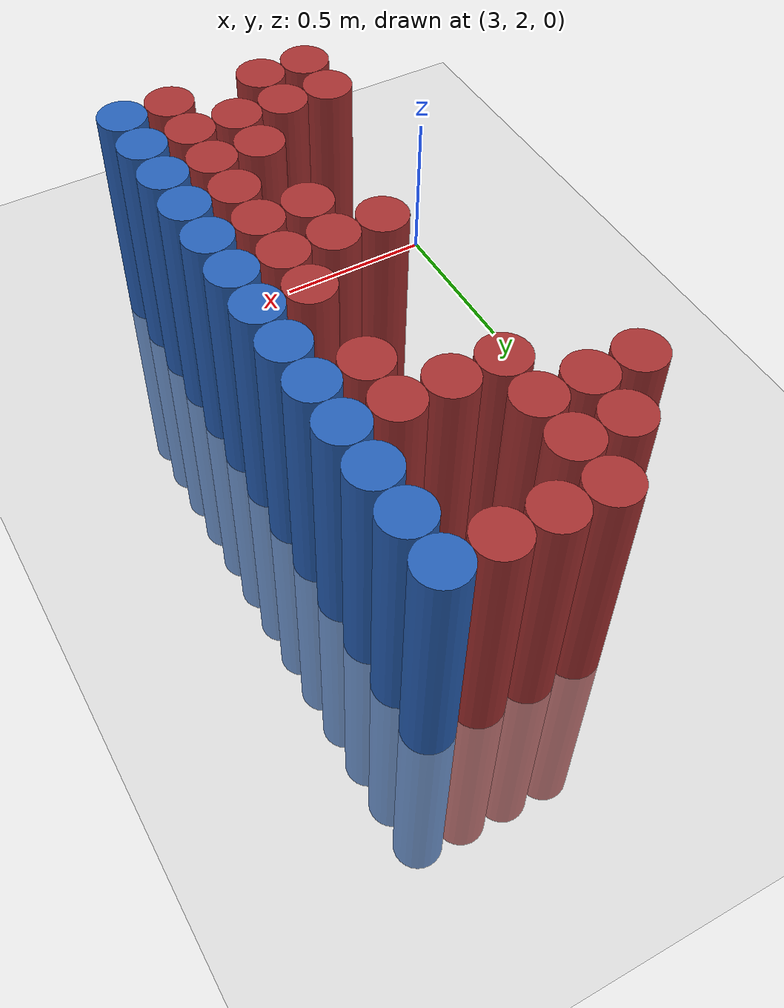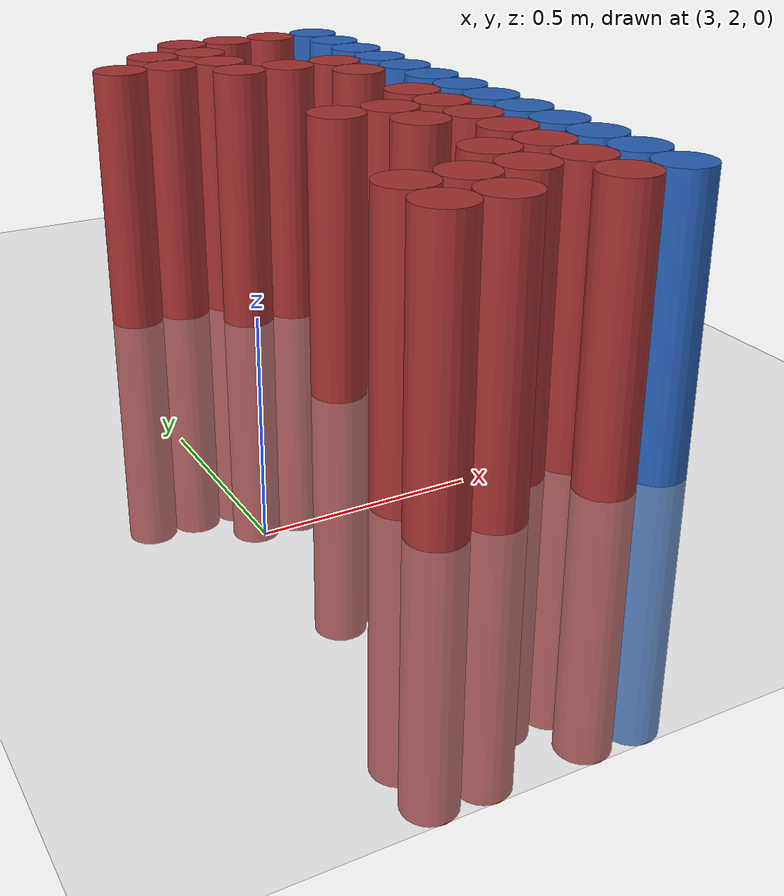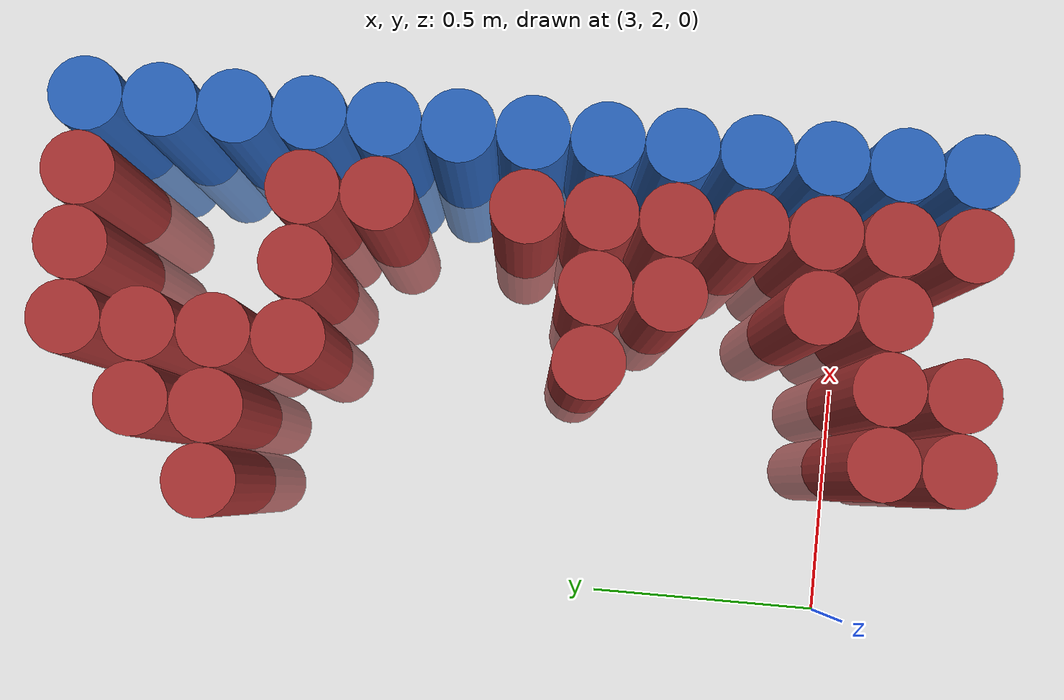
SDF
<sdf version="1.6">
 <world name="default">
  <model name="ground_plane">
   <static>1</static>
   <link name="link">
    <collision name="collision">
     <geometry><plane><normal>0 0 1</normal><size>100 100</size></plane></geometry>
     <surface><friction><ode><mu>100</mu><mu2>50</mu2></ode></friction></surface>
    </collision>
    <visual name="visual">
     <cast_shadows>0</cast_shadows>
     <geometry><plane><normal>0 0 1</normal><size>100 100</size></plane></geometry>
     <material>
      <script><uri>file://media/materials/scripts/gazebo.material</uri><name>Gazebo/Grey</name></script>
     </material>
    </visual>
   </link>
  </model>
  <model name="unit_cylinder_140">
   <static>1</static>
   <pose>3.925000 1.975000 0.000000 0.000000 0.000000 0.000000</pose>
   <link name="link">
    <inertial>
     <mass>1</mass>
     <inertia><ixx>0.145833</ixx><ixy>0</ixy><ixz>0</ixz><iyy>0.145833</iyy><iyz>0</iyz><izz>0.125</izz></inertia>
    </inertial>
    <collision name="collision">
     <geometry><cylinder><radius>0.075000</radius><length>1.5</length></cylinder></geometry>
    </collision>
    <visual name="visual">
     <geometry><cylinder><radius>0.075000</radius><length>1.5</length></cylinder></geometry>
     <material>
      <ambient>0.152000 0.379000 0.720000 1</ambient>
      <diffuse>0.152000 0.379000 0.720000 1</diffuse>
     </material>
     <material>
      <script><name>Gazebo/Grey</name><uri>file://media/materials/scripts/gazebo.material</uri></script>
     </material>
    </visual>
   </link>
  </model>
  <model name="unit_cylinder_142">
   <static>1</static>
   <pose>3.925000 2.125000 0.000000 0.000000 0.000000 0.000000</pose>
   <link name="link">
    <inertial>
     <mass>1</mass>
     <inertia><ixx>0.145833</ixx><ixy>0</ixy><ixz>0</ixz><iyy>0.145833</iyy><iyz>0</iyz><izz>0.125</izz></inertia>
    </inertial>
    <collision name="collision">
     <geometry><cylinder><radius>0.075000</radius><length>1.5</length></cylinder></geometry>
    </collision>
    <visual name="visual">
     <geometry><cylinder><radius>0.075000</radius><length>1.5</length></cylinder></geometry>
     <material>
      <ambient>0.152000 0.379000 0.720000 1</ambient>
      <diffuse>0.152000 0.379000 0.720000 1</diffuse>
     </material>
     <material>
      <script><name>Gazebo/Grey</name><uri>file://media/materials/scripts/gazebo.material</uri></script>
     </material>
    </visual>
   </link>
  </model>
  <model name="unit_cylinder_144">
   <static>1</static>
   <pose>3.925000 2.275000 0.000000 0.000000 0.000000 0.000000</pose>
   <link name="link">
    <inertial>
     <mass>1</mass>
     <inertia><ixx>0.145833</ixx><ixy>0</ixy><ixz>0</ixz><iyy>0.145833</iyy><iyz>0</iyz><izz>0.125</izz></inertia>
    </inertial>
    <collision name="collision">
     <geometry><cylinder><radius>0.075000</radius><length>1.5</length></cylinder></geometry>
    </collision>
    <visual name="visual">
     <geometry><cylinder><radius>0.075000</radius><length>1.5</length></cylinder></geometry>
     <material>
      <ambient>0.152000 0.379000 0.720000 1</ambient>
      <diffuse>0.152000 0.379000 0.720000 1</diffuse>
     </material>
     <material>
      <script><name>Gazebo/Grey</name><uri>file://media/materials/scripts/gazebo.material</uri></script>
     </material>
    </visual>
   </link>
  </model>
  <model name="unit_cylinder_146">
   <static>1</static>
   <pose>3.925000 2.425000 0.000000 0.000000 0.000000 0.000000</pose>
   <link name="link">
    <inertial>
     <mass>1</mass>
     <inertia><ixx>0.145833</ixx><ixy>0</ixy><ixz>0</ixz><iyy>0.145833</iyy><iyz>0</iyz><izz>0.125</izz></inertia>
    </inertial>
    <collision name="collision">
     <geometry><cylinder><radius>0.075000</radius><length>1.5</length></cylinder></geometry>
    </collision>
    <visual name="visual">
     <geometry><cylinder><radius>0.075000</radius><length>1.5</length></cylinder></geometry>
     <material>
      <ambient>0.152000 0.379000 0.720000 1</ambient>
      <diffuse>0.152000 0.379000 0.720000 1</diffuse>
     </material>
     <material>
      <script><name>Gazebo/Grey</name><uri>file://media/materials/scripts/gazebo.material</uri></script>
     </material>
    </visual>
   </link>
  </model>
  <model name="unit_cylinder_148">
   <static>1</static>
   <pose>3.925000 2.575000 0.000000 0.000000 0.000000 0.000000</pose>
   <link name="link">
    <inertial>
     <mass>1</mass>
     <inertia><ixx>0.145833</ixx><ixy>0</ixy><ixz>0</ixz><iyy>0.145833</iyy><iyz>0</iyz><izz>0.125</izz></inertia>
    </inertial>
    <collision name="collision">
     <geometry><cylinder><radius>0.075000</radius><length>1.5</length></cylinder></geometry>
    </collision>
    <visual name="visual">
     <geometry><cylinder><radius>0.075000</radius><length>1.5</length></cylinder></geometry>
     <material>
      <ambient>0.152000 0.379000 0.720000 1</ambient>
      <diffuse>0.152000 0.379000 0.720000 1</diffuse>
     </material>
     <material>
      <script><name>Gazebo/Grey</name><uri>file://media/materials/scripts/gazebo.material</uri></script>
     </material>
    </visual>
   </link>
  </model>
  <model name="unit_cylinder_150">
   <static>1</static>
   <pose>3.925000 2.725000 0.000000 0.000000 0.000000 0.000000</pose>
   <link name="link">
    <inertial>
     <mass>1</mass>
     <inertia><ixx>0.145833</ixx><ixy>0</ixy><ixz>0</ixz><iyy>0.145833</iyy><iyz>0</iyz><izz>0.125</izz></inertia>
    </inertial>
    <collision name="collision">
     <geometry><cylinder><radius>0.075000</radius><length>1.5</length></cylinder></geometry>
    </collision>
    <visual name="visual">
     <geometry><cylinder><radius>0.075000</radius><length>1.5</length></cylinder></geometry>
     <material>
      <ambient>0.152000 0.379000 0.720000 1</ambient>
      <diffuse>0.152000 0.379000 0.720000 1</diffuse>
     </material>
     <material>
      <script><name>Gazebo/Grey</name><uri>file://media/materials/scripts/gazebo.material</uri></script>
     </material>
    </visual>
   </link>
  </model>
  <model name="unit_cylinder_152">
   <static>1</static>
   <pose>3.925000 2.875000 0.000000 0.000000 0.000000 0.000000</pose>
   <link name="link">
    <inertial>
     <mass>1</mass>
     <inertia><ixx>0.145833</ixx><ixy>0</ixy><ixz>0</ixz><iyy>0.145833</iyy><iyz>0</iyz><izz>0.125</izz></inertia>
    </inertial>
    <collision name="collision">
     <geometry><cylinder><radius>0.075000</radius><length>1.5</length></cylinder></geometry>
    </collision>
    <visual name="visual">
     <geometry><cylinder><radius>0.075000</radius><length>1.5</length></cylinder></geometry>
     <material>
      <ambient>0.152000 0.379000 0.720000 1</ambient>
      <diffuse>0.152000 0.379000 0.720000 1</diffuse>
     </material>
     <material>
      <script><name>Gazebo/Grey</name><uri>file://media/materials/scripts/gazebo.material</uri></script>
     </material>
    </visual>
   </link>
  </model>
  <model name="unit_cylinder_154">
   <static>1</static>
   <pose>3.925000 3.025000 0.000000 0.000000 0.000000 0.000000</pose>
   <link name="link">
    <inertial>
     <mass>1</mass>
     <inertia><ixx>0.145833</ixx><ixy>0</ixy><ixz>0</ixz><iyy>0.145833</iyy><iyz>0</iyz><izz>0.125</izz></inertia>
    </inertial>
    <collision name="collision">
     <geometry><cylinder><radius>0.075000</radius><length>1.5</length></cylinder></geometry>
    </collision>
    <visual name="visual">
     <geometry><cylinder><radius>0.075000</radius><length>1.5</length></cylinder></geometry>
     <material>
      <ambient>0.152000 0.379000 0.720000 1</ambient>
      <diffuse>0.152000 0.379000 0.720000 1</diffuse>
     </material>
     <material>
      <script><name>Gazebo/Grey</name><uri>file://media/materials/scripts/gazebo.material</uri></script>
     </material>
    </visual>
   </link>
  </model>
  <model name="unit_cylinder_156">
   <static>1</static>
   <pose>3.925000 3.175000 0.000000 0.000000 0.000000 0.000000</pose>
   <link name="link">
    <inertial>
     <mass>1</mass>
     <inertia><ixx>0.145833</ixx><ixy>0</ixy><ixz>0</ixz><iyy>0.145833</iyy><iyz>0</iyz><izz>0.125</izz></inertia>
    </inertial>
    <collision name="collision">
     <geometry><cylinder><radius>0.075000</radius><length>1.5</length></cylinder></geometry>
    </collision>
    <visual name="visual">
     <geometry><cylinder><radius>0.075000</radius><length>1.5</length></cylinder></geometry>
     <material>
      <ambient>0.152000 0.379000 0.720000 1</ambient>
      <diffuse>0.152000 0.379000 0.720000 1</diffuse>
     </material>
     <material>
      <script><name>Gazebo/Grey</name><uri>file://media/materials/scripts/gazebo.material</uri></script>
     </material>
    </visual>
   </link>
  </model>
  <model name="unit_cylinder_158">
   <static>1</static>
   <pose>3.925000 3.325000 0.000000 0.000000 0.000000 0.000000</pose>
   <link name="link">
    <inertial>
     <mass>1</mass>
     <inertia><ixx>0.145833</ixx><ixy>0</ixy><ixz>0</ixz><iyy>0.145833</iyy><iyz>0</iyz><izz>0.125</izz></inertia>
    </inertial>
    <collision name="collision">
     <geometry><cylinder><radius>0.075000</radius><length>1.5</length></cylinder></geometry>
    </collision>
    <visual name="visual">
     <geometry><cylinder><radius>0.075000</radius><length>1.5</length></cylinder></geometry>
     <material>
      <ambient>0.152000 0.379000 0.720000 1</ambient>
      <diffuse>0.152000 0.379000 0.720000 1</diffuse>
     </material>
     <material>
      <script><name>Gazebo/Grey</name><uri>file://media/materials/scripts/gazebo.material</uri></script>
     </material>
    </visual>
   </link>
  </model>
  <model name="unit_cylinder_160">
   <static>1</static>
   <pose>3.925000 3.475000 0.000000 0.000000 0.000000 0.000000</pose>
   <link name="link">
    <inertial>
     <mass>1</mass>
     <inertia><ixx>0.145833</ixx><ixy>0</ixy><ixz>0</ixz><iyy>0.145833</iyy><iyz>0</iyz><izz>0.125</izz></inertia>
    </inertial>
    <collision name="collision">
     <geometry><cylinder><radius>0.075000</radius><length>1.5</length></cylinder></geometry>
    </collision>
    <visual name="visual">
     <geometry><cylinder><radius>0.075000</radius><length>1.5</length></cylinder></geometry>
     <material>
      <ambient>0.152000 0.379000 0.720000 1</ambient>
      <diffuse>0.152000 0.379000 0.720000 1</diffuse>
     </material>
     <material>
      <script><name>Gazebo/Grey</name><uri>file://media/materials/scripts/gazebo.material</uri></script>
     </material>
    </visual>
   </link>
  </model>
  <model name="unit_cylinder_162">
   <static>1</static>
   <pose>3.925000 3.625000 0.000000 0.000000 0.000000 0.000000</pose>
   <link name="link">
    <inertial>
     <mass>1</mass>
     <inertia><ixx>0.145833</ixx><ixy>0</ixy><ixz>0</ixz><iyy>0.145833</iyy><iyz>0</iyz><izz>0.125</izz></inertia>
    </inertial>
    <collision name="collision">
     <geometry><cylinder><radius>0.075000</radius><length>1.5</length></cylinder></geometry>
    </collision>
    <visual name="visual">
     <geometry><cylinder><radius>0.075000</radius><length>1.5</length></cylinder></geometry>
     <material>
      <ambient>0.152000 0.379000 0.720000 1</ambient>
      <diffuse>0.152000 0.379000 0.720000 1</diffuse>
     </material>
     <material>
      <script><name>Gazebo/Grey</name><uri>file://media/materials/scripts/gazebo.material</uri></script>
     </material>
    </visual>
   </link>
  </model>
  <model name="unit_cylinder_428">
   <static>1</static>
   <pose>3.175000 3.325000 0.000000 0.000000 0.000000 0.000000</pose>
   <link name="link">
    <inertial>
     <mass>1</mass>
     <inertia><ixx>0.145833</ixx><ixy>0</ixy><ixz>0</ixz><iyy>0.145833</iyy><iyz>0</iyz><izz>0.125</izz></inertia>
    </inertial>
    <collision name="collision">
     <geometry><cylinder><radius>0.075000</radius><length>1.5</length></cylinder></geometry>
    </collision>
    <visual name="visual">
     <geometry><cylinder><radius>0.075000</radius><length>1.5</length></cylinder></geometry>
     <material>
      <ambient>0.648000 0.192000 0.192000 1</ambient>
      <diffuse>0.648000 0.192000 0.192000 1</diffuse>
     </material>
     <material>
      <script><name>Gazebo/Grey</name><uri>file://media/materials/scripts/gazebo.material</uri></script>
     </material>
    </visual>
   </link>
  </model>
  <model name="unit_cylinder_432">
   <static>1</static>
   <pose>3.325000 1.825000 0.000000 0.000000 0.000000 0.000000</pose>
   <link name="link">
    <inertial>
     <mass>1</mass>
     <inertia><ixx>0.145833</ixx><ixy>0</ixy><ixz>0</ixz><iyy>0.145833</iyy><iyz>0</iyz><izz>0.125</izz></inertia>
    </inertial>
    <collision name="collision">
     <geometry><cylinder><radius>0.075000</radius><length>1.5</length></cylinder></geometry>
    </collision>
    <visual name="visual">
     <geometry><cylinder><radius>0.075000</radius><length>1.5</length></cylinder></geometry>
     <material>
      <ambient>0.648000 0.192000 0.192000 1</ambient>
      <diffuse>0.648000 0.192000 0.192000 1</diffuse>
     </material>
     <material>
      <script><name>Gazebo/Grey</name><uri>file://media/materials/scripts/gazebo.material</uri></script>
     </material>
    </visual>
   </link>
  </model>
  <model name="unit_cylinder_433">
   <static>1</static>
   <pose>3.325000 1.975000 0.000000 0.000000 0.000000 0.000000</pose>
   <link name="link">
    <inertial>
     <mass>1</mass>
     <inertia><ixx>0.145833</ixx><ixy>0</ixy><ixz>0</ixz><iyy>0.145833</iyy><iyz>0</iyz><izz>0.125</izz></inertia>
    </inertial>
    <collision name="collision">
     <geometry><cylinder><radius>0.075000</radius><length>1.5</length></cylinder></geometry>
    </collision>
    <visual name="visual">
     <geometry><cylinder><radius>0.075000</radius><length>1.5</length></cylinder></geometry>
     <material>
      <ambient>0.648000 0.192000 0.192000 1</ambient>
      <diffuse>0.648000 0.192000 0.192000 1</diffuse>
     </material>
     <material>
      <script><name>Gazebo/Grey</name><uri>file://media/materials/scripts/gazebo.material</uri></script>
     </material>
    </visual>
   </link>
  </model>
  <model name="unit_cylinder_434">
   <static>1</static>
   <pose>3.325000 3.325000 0.000000 0.000000 0.000000 0.000000</pose>
   <link name="link">
    <inertial>
     <mass>1</mass>
     <inertia><ixx>0.145833</ixx><ixy>0</ixy><ixz>0</ixz><iyy>0.145833</iyy><iyz>0</iyz><izz>0.125</izz></inertia>
    </inertial>
    <collision name="collision">
     <geometry><cylinder><radius>0.075000</radius><length>1.5</length></cylinder></geometry>
    </collision>
    <visual name="visual">
     <geometry><cylinder><radius>0.075000</radius><length>1.5</length></cylinder></geometry>
     <material>
      <ambient>0.648000 0.192000 0.192000 1</ambient>
      <diffuse>0.648000 0.192000 0.192000 1</diffuse>
     </material>
     <material>
      <script><name>Gazebo/Grey</name><uri>file://media/materials/scripts/gazebo.material</uri></script>
     </material>
    </visual>
   </link>
  </model>
  <model name="unit_cylinder_435">
   <static>1</static>
   <pose>3.325000 3.475000 0.000000 0.000000 0.000000 0.000000</pose>
   <link name="link">
    <inertial>
     <mass>1</mass>
     <inertia><ixx>0.145833</ixx><ixy>0</ixy><ixz>0</ixz><iyy>0.145833</iyy><iyz>0</iyz><izz>0.125</izz></inertia>
    </inertial>
    <collision name="collision">
     <geometry><cylinder><radius>0.075000</radius><length>1.5</length></cylinder></geometry>
    </collision>
    <visual name="visual">
     <geometry><cylinder><radius>0.075000</radius><length>1.5</length></cylinder></geometry>
     <material>
      <ambient>0.648000 0.192000 0.192000 1</ambient>
      <diffuse>0.648000 0.192000 0.192000 1</diffuse>
     </material>
     <material>
      <script><name>Gazebo/Grey</name><uri>file://media/materials/scripts/gazebo.material</uri></script>
     </material>
    </visual>
   </link>
  </model>
  <model name="unit_cylinder_436">
   <static>1</static>
   <pose>3.475000 1.825000 0.000000 0.000000 0.000000 0.000000</pose>
   <link name="link">
    <inertial>
     <mass>1</mass>
     <inertia><ixx>0.145833</ixx><ixy>0</ixy><ixz>0</ixz><iyy>0.145833</iyy><iyz>0</iyz><izz>0.125</izz></inertia>
    </inertial>
    <collision name="collision">
     <geometry><cylinder><radius>0.075000</radius><length>1.5</length></cylinder></geometry>
    </collision>
    <visual name="visual">
     <geometry><cylinder><radius>0.075000</radius><length>1.5</length></cylinder></geometry>
     <material>
      <ambient>0.648000 0.192000 0.192000 1</ambient>
      <diffuse>0.648000 0.192000 0.192000 1</diffuse>
     </material>
     <material>
      <script><name>Gazebo/Grey</name><uri>file://media/materials/scripts/gazebo.material</uri></script>
     </material>
    </visual>
   </link>
  </model>
  <model name="unit_cylinder_437">
   <static>1</static>
   <pose>3.475000 1.975000 0.000000 0.000000 0.000000 0.000000</pose>
   <link name="link">
    <inertial>
     <mass>1</mass>
     <inertia><ixx>0.145833</ixx><ixy>0</ixy><ixz>0</ixz><iyy>0.145833</iyy><iyz>0</iyz><izz>0.125</izz></inertia>
    </inertial>
    <collision name="collision">
     <geometry><cylinder><radius>0.075000</radius><length>1.5</length></cylinder></geometry>
    </collision>
    <visual name="visual">
     <geometry><cylinder><radius>0.075000</radius><length>1.5</length></cylinder></geometry>
     <material>
      <ambient>0.648000 0.192000 0.192000 1</ambient>
      <diffuse>0.648000 0.192000 0.192000 1</diffuse>
     </material>
     <material>
      <script><name>Gazebo/Grey</name><uri>file://media/materials/scripts/gazebo.material</uri></script>
     </material>
    </visual>
   </link>
  </model>
  <model name="unit_cylinder_438">
   <static>1</static>
   <pose>3.475000 2.575000 0.000000 0.000000 0.000000 0.000000</pose>
   <link name="link">
    <inertial>
     <mass>1</mass>
     <inertia><ixx>0.145833</ixx><ixy>0</ixy><ixz>0</ixz><iyy>0.145833</iyy><iyz>0</iyz><izz>0.125</izz></inertia>
    </inertial>
    <collision name="collision">
     <geometry><cylinder><radius>0.075000</radius><length>1.5</length></cylinder></geometry>
    </collision>
    <visual name="visual">
     <geometry><cylinder><radius>0.075000</radius><length>1.5</length></cylinder></geometry>
     <material>
      <ambient>0.648000 0.192000 0.192000 1</ambient>
      <diffuse>0.648000 0.192000 0.192000 1</diffuse>
     </material>
     <material>
      <script><name>Gazebo/Grey</name><uri>file://media/materials/scripts/gazebo.material</uri></script>
     </material>
    </visual>
   </link>
  </model>
  <model name="unit_cylinder_439">
   <static>1</static>
   <pose>3.475000 3.175000 0.000000 0.000000 0.000000 0.000000</pose>
   <link name="link">
    <inertial>
     <mass>1</mass>
     <inertia><ixx>0.145833</ixx><ixy>0</ixy><ixz>0</ixz><iyy>0.145833</iyy><iyz>0</iyz><izz>0.125</izz></inertia>
    </inertial>
    <collision name="collision">
     <geometry><cylinder><radius>0.075000</radius><length>1.5</length></cylinder></geometry>
    </collision>
    <visual name="visual">
     <geometry><cylinder><radius>0.075000</radius><length>1.5</length></cylinder></geometry>
     <material>
      <ambient>0.648000 0.192000 0.192000 1</ambient>
      <diffuse>0.648000 0.192000 0.192000 1</diffuse>
     </material>
     <material>
      <script><name>Gazebo/Grey</name><uri>file://media/materials/scripts/gazebo.material</uri></script>
     </material>
    </visual>
   </link>
  </model>
  <model name="unit_cylinder_440">
   <static>1</static>
   <pose>3.475000 3.325000 0.000000 0.000000 0.000000 0.000000</pose>
   <link name="link">
    <inertial>
     <mass>1</mass>
     <inertia><ixx>0.145833</ixx><ixy>0</ixy><ixz>0</ixz><iyy>0.145833</iyy><iyz>0</iyz><izz>0.125</izz></inertia>
    </inertial>
    <collision name="collision">
     <geometry><cylinder><radius>0.075000</radius><length>1.5</length></cylinder></geometry>
    </collision>
    <visual name="visual">
     <geometry><cylinder><radius>0.075000</radius><length>1.5</length></cylinder></geometry>
     <material>
      <ambient>0.648000 0.192000 0.192000 1</ambient>
      <diffuse>0.648000 0.192000 0.192000 1</diffuse>
     </material>
     <material>
      <script><name>Gazebo/Grey</name><uri>file://media/materials/scripts/gazebo.material</uri></script>
     </material>
    </visual>
   </link>
  </model>
  <model name="unit_cylinder_441">
   <static>1</static>
   <pose>3.475000 3.475000 0.000000 0.000000 0.000000 0.000000</pose>
   <link name="link">
    <inertial>
     <mass>1</mass>
     <inertia><ixx>0.145833</ixx><ixy>0</ixy><ixz>0</ixz><iyy>0.145833</iyy><iyz>0</iyz><izz>0.125</izz></inertia>
    </inertial>
    <collision name="collision">
     <geometry><cylinder><radius>0.075000</radius><length>1.5</length></cylinder></geometry>
    </collision>
    <visual name="visual">
     <geometry><cylinder><radius>0.075000</radius><length>1.5</length></cylinder></geometry>
     <material>
      <ambient>0.648000 0.192000 0.192000 1</ambient>
      <diffuse>0.648000 0.192000 0.192000 1</diffuse>
     </material>
     <material>
      <script><name>Gazebo/Grey</name><uri>file://media/materials/scripts/gazebo.material</uri></script>
     </material>
    </visual>
   </link>
  </model>
  <model name="unit_cylinder_442">
   <static>1</static>
   <pose>3.475000 3.625000 0.000000 0.000000 0.000000 0.000000</pose>
   <link name="link">
    <inertial>
     <mass>1</mass>
     <inertia><ixx>0.145833</ixx><ixy>0</ixy><ixz>0</ixz><iyy>0.145833</iyy><iyz>0</iyz><izz>0.125</izz></inertia>
    </inertial>
    <collision name="collision">
     <geometry><cylinder><radius>0.075000</radius><length>1.5</length></cylinder></geometry>
    </collision>
    <visual name="visual">
     <geometry><cylinder><radius>0.075000</radius><length>1.5</length></cylinder></geometry>
     <material>
      <ambient>0.648000 0.192000 0.192000 1</ambient>
      <diffuse>0.648000 0.192000 0.192000 1</diffuse>
     </material>
     <material>
      <script><name>Gazebo/Grey</name><uri>file://media/materials/scripts/gazebo.material</uri></script>
     </material>
    </visual>
   </link>
  </model>
  <model name="unit_cylinder_447">
   <static>1</static>
   <pose>3.625000 1.975000 0.000000 0.000000 0.000000 0.000000</pose>
   <link name="link">
    <inertial>
     <mass>1</mass>
     <inertia><ixx>0.145833</ixx><ixy>0</ixy><ixz>0</ixz><iyy>0.145833</iyy><iyz>0</iyz><izz>0.125</izz></inertia>
    </inertial>
    <collision name="collision">
     <geometry><cylinder><radius>0.075000</radius><length>1.5</length></cylinder></geometry>
    </collision>
    <visual name="visual">
     <geometry><cylinder><radius>0.075000</radius><length>1.5</length></cylinder></geometry>
     <material>
      <ambient>0.648000 0.192000 0.192000 1</ambient>
      <diffuse>0.648000 0.192000 0.192000 1</diffuse>
     </material>
     <material>
      <script><name>Gazebo/Grey</name><uri>file://media/materials/scripts/gazebo.material</uri></script>
     </material>
    </visual>
   </link>
  </model>
  <model name="unit_cylinder_448">
   <static>1</static>
   <pose>3.625000 2.125000 0.000000 0.000000 0.000000 0.000000</pose>
   <link name="link">
    <inertial>
     <mass>1</mass>
     <inertia><ixx>0.145833</ixx><ixy>0</ixy><ixz>0</ixz><iyy>0.145833</iyy><iyz>0</iyz><izz>0.125</izz></inertia>
    </inertial>
    <collision name="collision">
     <geometry><cylinder><radius>0.075000</radius><length>1.5</length></cylinder></geometry>
    </collision>
    <visual name="visual">
     <geometry><cylinder><radius>0.075000</radius><length>1.5</length></cylinder></geometry>
     <material>
      <ambient>0.648000 0.192000 0.192000 1</ambient>
      <diffuse>0.648000 0.192000 0.192000 1</diffuse>
     </material>
     <material>
      <script><name>Gazebo/Grey</name><uri>file://media/materials/scripts/gazebo.material</uri></script>
     </material>
    </visual>
   </link>
  </model>
  <model name="unit_cylinder_449">
   <static>1</static>
   <pose>3.625000 2.425000 0.000000 0.000000 0.000000 0.000000</pose>
   <link name="link">
    <inertial>
     <mass>1</mass>
     <inertia><ixx>0.145833</ixx><ixy>0</ixy><ixz>0</ixz><iyy>0.145833</iyy><iyz>0</iyz><izz>0.125</izz></inertia>
    </inertial>
    <collision name="collision">
     <geometry><cylinder><radius>0.075000</radius><length>1.5</length></cylinder></geometry>
    </collision>
    <visual name="visual">
     <geometry><cylinder><radius>0.075000</radius><length>1.5</length></cylinder></geometry>
     <material>
      <ambient>0.648000 0.192000 0.192000 1</ambient>
      <diffuse>0.648000 0.192000 0.192000 1</diffuse>
     </material>
     <material>
      <script><name>Gazebo/Grey</name><uri>file://media/materials/scripts/gazebo.material</uri></script>
     </material>
    </visual>
   </link>
  </model>
  <model name="unit_cylinder_450">
   <static>1</static>
   <pose>3.625000 2.575000 0.000000 0.000000 0.000000 0.000000</pose>
   <link name="link">
    <inertial>
     <mass>1</mass>
     <inertia><ixx>0.145833</ixx><ixy>0</ixy><ixz>0</ixz><iyy>0.145833</iyy><iyz>0</iyz><izz>0.125</izz></inertia>
    </inertial>
    <collision name="collision">
     <geometry><cylinder><radius>0.075000</radius><length>1.5</length></cylinder></geometry>
    </collision>
    <visual name="visual">
     <geometry><cylinder><radius>0.075000</radius><length>1.5</length></cylinder></geometry>
     <material>
      <ambient>0.648000 0.192000 0.192000 1</ambient>
      <diffuse>0.648000 0.192000 0.192000 1</diffuse>
     </material>
     <material>
      <script><name>Gazebo/Grey</name><uri>file://media/materials/scripts/gazebo.material</uri></script>
     </material>
    </visual>
   </link>
  </model>
  <model name="unit_cylinder_451">
   <static>1</static>
   <pose>3.625000 3.175000 0.000000 0.000000 0.000000 0.000000</pose>
   <link name="link">
    <inertial>
     <mass>1</mass>
     <inertia><ixx>0.145833</ixx><ixy>0</ixy><ixz>0</ixz><iyy>0.145833</iyy><iyz>0</iyz><izz>0.125</izz></inertia>
    </inertial>
    <collision name="collision">
     <geometry><cylinder><radius>0.075000</radius><length>1.5</length></cylinder></geometry>
    </collision>
    <visual name="visual">
     <geometry><cylinder><radius>0.075000</radius><length>1.5</length></cylinder></geometry>
     <material>
      <ambient>0.648000 0.192000 0.192000 1</ambient>
      <diffuse>0.648000 0.192000 0.192000 1</diffuse>
     </material>
     <material>
      <script><name>Gazebo/Grey</name><uri>file://media/materials/scripts/gazebo.material</uri></script>
     </material>
    </visual>
   </link>
  </model>
  <model name="unit_cylinder_452">
   <static>1</static>
   <pose>3.625000 3.625000 0.000000 0.000000 0.000000 0.000000</pose>
   <link name="link">
    <inertial>
     <mass>1</mass>
     <inertia><ixx>0.145833</ixx><ixy>0</ixy><ixz>0</ixz><iyy>0.145833</iyy><iyz>0</iyz><izz>0.125</izz></inertia>
    </inertial>
    <collision name="collision">
     <geometry><cylinder><radius>0.075000</radius><length>1.5</length></cylinder></geometry>
    </collision>
    <visual name="visual">
     <geometry><cylinder><radius>0.075000</radius><length>1.5</length></cylinder></geometry>
     <material>
      <ambient>0.648000 0.192000 0.192000 1</ambient>
      <diffuse>0.648000 0.192000 0.192000 1</diffuse>
     </material>
     <material>
      <script><name>Gazebo/Grey</name><uri>file://media/materials/scripts/gazebo.material</uri></script>
     </material>
    </visual>
   </link>
  </model>
  <model name="unit_cylinder_470">
   <static>1</static>
   <pose>3.775000 1.825000 0.000000 0.000000 0.000000 0.000000</pose>
   <link name="link">
    <inertial>
     <mass>1</mass>
     <inertia><ixx>0.145833</ixx><ixy>0</ixy><ixz>0</ixz><iyy>0.145833</iyy><iyz>0</iyz><izz>0.125</izz></inertia>
    </inertial>
    <collision name="collision">
     <geometry><cylinder><radius>0.075000</radius><length>1.5</length></cylinder></geometry>
    </collision>
    <visual name="visual">
     <geometry><cylinder><radius>0.075000</radius><length>1.5</length></cylinder></geometry>
     <material>
      <ambient>0.648000 0.192000 0.192000 1</ambient>
      <diffuse>0.648000 0.192000 0.192000 1</diffuse>
     </material>
     <material>
      <script><name>Gazebo/Grey</name><uri>file://media/materials/scripts/gazebo.material</uri></script>
     </material>
    </visual>
   </link>
  </model>
  <model name="unit_cylinder_471">
   <static>1</static>
   <pose>3.775000 1.975000 0.000000 0.000000 0.000000 0.000000</pose>
   <link name="link">
    <inertial>
     <mass>1</mass>
     <inertia><ixx>0.145833</ixx><ixy>0</ixy><ixz>0</ixz><iyy>0.145833</iyy><iyz>0</iyz><izz>0.125</izz></inertia>
    </inertial>
    <collision name="collision">
     <geometry><cylinder><radius>0.075000</radius><length>1.5</length></cylinder></geometry>
    </collision>
    <visual name="visual">
     <geometry><cylinder><radius>0.075000</radius><length>1.5</length></cylinder></geometry>
     <material>
      <ambient>0.648000 0.192000 0.192000 1</ambient>
      <diffuse>0.648000 0.192000 0.192000 1</diffuse>
     </material>
     <material>
      <script><name>Gazebo/Grey</name><uri>file://media/materials/scripts/gazebo.material</uri></script>
     </material>
    </visual>
   </link>
  </model>
  <model name="unit_cylinder_472">
   <static>1</static>
   <pose>3.775000 2.125000 0.000000 0.000000 0.000000 0.000000</pose>
   <link name="link">
    <inertial>
     <mass>1</mass>
     <inertia><ixx>0.145833</ixx><ixy>0</ixy><ixz>0</ixz><iyy>0.145833</iyy><iyz>0</iyz><izz>0.125</izz></inertia>
    </inertial>
    <collision name="collision">
     <geometry><cylinder><radius>0.075000</radius><length>1.5</length></cylinder></geometry>
    </collision>
    <visual name="visual">
     <geometry><cylinder><radius>0.075000</radius><length>1.5</length></cylinder></geometry>
     <material>
      <ambient>0.648000 0.192000 0.192000 1</ambient>
      <diffuse>0.648000 0.192000 0.192000 1</diffuse>
     </material>
     <material>
      <script><name>Gazebo/Grey</name><uri>file://media/materials/scripts/gazebo.material</uri></script>
     </material>
    </visual>
   </link>
  </model>
  <model name="unit_cylinder_473">
   <static>1</static>
   <pose>3.775000 2.275000 0.000000 0.000000 0.000000 0.000000</pose>
   <link name="link">
    <inertial>
     <mass>1</mass>
     <inertia><ixx>0.145833</ixx><ixy>0</ixy><ixz>0</ixz><iyy>0.145833</iyy><iyz>0</iyz><izz>0.125</izz></inertia>
    </inertial>
    <collision name="collision">
     <geometry><cylinder><radius>0.075000</radius><length>1.5</length></cylinder></geometry>
    </collision>
    <visual name="visual">
     <geometry><cylinder><radius>0.075000</radius><length>1.5</length></cylinder></geometry>
     <material>
      <ambient>0.648000 0.192000 0.192000 1</ambient>
      <diffuse>0.648000 0.192000 0.192000 1</diffuse>
     </material>
     <material>
      <script><name>Gazebo/Grey</name><uri>file://media/materials/scripts/gazebo.material</uri></script>
     </material>
    </visual>
   </link>
  </model>
  <model name="unit_cylinder_474">
   <static>1</static>
   <pose>3.775000 2.425000 0.000000 0.000000 0.000000 0.000000</pose>
   <link name="link">
    <inertial>
     <mass>1</mass>
     <inertia><ixx>0.145833</ixx><ixy>0</ixy><ixz>0</ixz><iyy>0.145833</iyy><iyz>0</iyz><izz>0.125</izz></inertia>
    </inertial>
    <collision name="collision">
     <geometry><cylinder><radius>0.075000</radius><length>1.5</length></cylinder></geometry>
    </collision>
    <visual name="visual">
     <geometry><cylinder><radius>0.075000</radius><length>1.5</length></cylinder></geometry>
     <material>
      <ambient>0.648000 0.192000 0.192000 1</ambient>
      <diffuse>0.648000 0.192000 0.192000 1</diffuse>
     </material>
     <material>
      <script><name>Gazebo/Grey</name><uri>file://media/materials/scripts/gazebo.material</uri></script>
     </material>
    </visual>
   </link>
  </model>
  <model name="unit_cylinder_475">
   <static>1</static>
   <pose>3.775000 2.575000 0.000000 0.000000 0.000000 0.000000</pose>
   <link name="link">
    <inertial>
     <mass>1</mass>
     <inertia><ixx>0.145833</ixx><ixy>0</ixy><ixz>0</ixz><iyy>0.145833</iyy><iyz>0</iyz><izz>0.125</izz></inertia>
    </inertial>
    <collision name="collision">
     <geometry><cylinder><radius>0.075000</radius><length>1.5</length></cylinder></geometry>
    </collision>
    <visual name="visual">
     <geometry><cylinder><radius>0.075000</radius><length>1.5</length></cylinder></geometry>
     <material>
      <ambient>0.648000 0.192000 0.192000 1</ambient>
      <diffuse>0.648000 0.192000 0.192000 1</diffuse>
     </material>
     <material>
      <script><name>Gazebo/Grey</name><uri>file://media/materials/scripts/gazebo.material</uri></script>
     </material>
    </visual>
   </link>
  </model>
  <model name="unit_cylinder_476">
   <static>1</static>
   <pose>3.775000 2.725000 0.000000 0.000000 0.000000 0.000000</pose>
   <link name="link">
    <inertial>
     <mass>1</mass>
     <inertia><ixx>0.145833</ixx><ixy>0</ixy><ixz>0</ixz><iyy>0.145833</iyy><iyz>0</iyz><izz>0.125</izz></inertia>
    </inertial>
    <collision name="collision">
     <geometry><cylinder><radius>0.075000</radius><length>1.5</length></cylinder></geometry>
    </collision>
    <visual name="visual">
     <geometry><cylinder><radius>0.075000</radius><length>1.5</length></cylinder></geometry>
     <material>
      <ambient>0.648000 0.192000 0.192000 1</ambient>
      <diffuse>0.648000 0.192000 0.192000 1</diffuse>
     </material>
     <material>
      <script><name>Gazebo/Grey</name><uri>file://media/materials/scripts/gazebo.material</uri></script>
     </material>
    </visual>
   </link>
  </model>
  <model name="unit_cylinder_477">
   <static>1</static>
   <pose>3.775000 3.025000 0.000000 0.000000 0.000000 0.000000</pose>
   <link name="link">
    <inertial>
     <mass>1</mass>
     <inertia><ixx>0.145833</ixx><ixy>0</ixy><ixz>0</ixz><iyy>0.145833</iyy><iyz>0</iyz><izz>0.125</izz></inertia>
    </inertial>
    <collision name="collision">
     <geometry><cylinder><radius>0.075000</radius><length>1.5</length></cylinder></geometry>
    </collision>
    <visual name="visual">
     <geometry><cylinder><radius>0.075000</radius><length>1.5</length></cylinder></geometry>
     <material>
      <ambient>0.648000 0.192000 0.192000 1</ambient>
      <diffuse>0.648000 0.192000 0.192000 1</diffuse>
     </material>
     <material>
      <script><name>Gazebo/Grey</name><uri>file://media/materials/scripts/gazebo.material</uri></script>
     </material>
    </visual>
   </link>
  </model>
  <model name="unit_cylinder_478">
   <static>1</static>
   <pose>3.775000 3.175000 0.000000 0.000000 0.000000 0.000000</pose>
   <link name="link">
    <inertial>
     <mass>1</mass>
     <inertia><ixx>0.145833</ixx><ixy>0</ixy><ixz>0</ixz><iyy>0.145833</iyy><iyz>0</iyz><izz>0.125</izz></inertia>
    </inertial>
    <collision name="collision">
     <geometry><cylinder><radius>0.075000</radius><length>1.5</length></cylinder></geometry>
    </collision>
    <visual name="visual">
     <geometry><cylinder><radius>0.075000</radius><length>1.5</length></cylinder></geometry>
     <material>
      <ambient>0.648000 0.192000 0.192000 1</ambient>
      <diffuse>0.648000 0.192000 0.192000 1</diffuse>
     </material>
     <material>
      <script><name>Gazebo/Grey</name><uri>file://media/materials/scripts/gazebo.material</uri></script>
     </material>
    </visual>
   </link>
  </model>
  <model name="unit_cylinder_479">
   <static>1</static>
   <pose>3.775000 3.625000 0.000000 0.000000 0.000000 0.000000</pose>
   <link name="link">
    <inertial>
     <mass>1</mass>
     <inertia><ixx>0.145833</ixx><ixy>0</ixy><ixz>0</ixz><iyy>0.145833</iyy><iyz>0</iyz><izz>0.125</izz></inertia>
    </inertial>
    <collision name="collision">
     <geometry><cylinder><radius>0.075000</radius><length>1.5</length></cylinder></geometry>
    </collision>
    <visual name="visual">
     <geometry><cylinder><radius>0.075000</radius><length>1.5</length></cylinder></geometry>
     <material>
      <ambient>0.648000 0.192000 0.192000 1</ambient>
      <diffuse>0.648000 0.192000 0.192000 1</diffuse>
     </material>
     <material>
      <script><name>Gazebo/Grey</name><uri>file://media/materials/scripts/gazebo.material</uri></script>
     </material>
    </visual>
   </link>
  </model>
  <model name="unit_cylinder_510">
   <static>1</static>
   <pose>3.925000 1.825000 0.000000 0.000000 0.000000 0.000000</pose>
   <link name="link">
    <inertial>
     <mass>1</mass>
     <inertia><ixx>0.145833</ixx><ixy>0</ixy><ixz>0</ixz><iyy>0.145833</iyy><iyz>0</iyz><izz>0.125</izz></inertia>
    </inertial>
    <collision name="collision">
     <geometry><cylinder><radius>0.075000</radius><length>1.5</length></cylinder></geometry>
    </collision>
    <visual name="visual">
     <geometry><cylinder><radius>0.075000</radius><length>1.5</length></cylinder></geometry>
     <material>
      <ambient>0.152000 0.379000 0.720000 1</ambient>
      <diffuse>0.152000 0.379000 0.720000 1</diffuse>
     </material>
     <material>
      <script><name>Gazebo/Grey</name><uri>file://media/materials/scripts/gazebo.material</uri></script>
     </material>
    </visual>
   </link>
  </model>
  <model name="unit_cylinder_511">
   <static>1</static>
   <pose>3.925000 1.975000 0.000000 0.000000 0.000000 0.000000</pose>
   <link name="link">
    <inertial>
     <mass>1</mass>
     <inertia><ixx>0.145833</ixx><ixy>0</ixy><ixz>0</ixz><iyy>0.145833</iyy><iyz>0</iyz><izz>0.125</izz></inertia>
    </inertial>
    <collision name="collision">
     <geometry><cylinder><radius>0.075000</radius><length>1.5</length></cylinder></geometry>
    </collision>
    <visual name="visual">
     <geometry><cylinder><radius>0.075000</radius><length>1.5</length></cylinder></geometry>
     <material>
      <ambient>0.152000 0.379000 0.720000 1</ambient>
      <diffuse>0.152000 0.379000 0.720000 1</diffuse>
     </material>
     <material>
      <script><name>Gazebo/Grey</name><uri>file://media/materials/scripts/gazebo.material</uri></script>
     </material>
    </visual>
   </link>
  </model>
  <model name="unit_cylinder_512">
   <static>1</static>
   <pose>3.925000 2.125000 0.000000 0.000000 0.000000 0.000000</pose>
   <link name="link">
    <inertial>
     <mass>1</mass>
     <inertia><ixx>0.145833</ixx><ixy>0</ixy><ixz>0</ixz><iyy>0.145833</iyy><iyz>0</iyz><izz>0.125</izz></inertia>
    </inertial>
    <collision name="collision">
     <geometry><cylinder><radius>0.075000</radius><length>1.5</length></cylinder></geometry>
    </collision>
    <visual name="visual">
     <geometry><cylinder><radius>0.075000</radius><length>1.5</length></cylinder></geometry>
     <material>
      <ambient>0.152000 0.379000 0.720000 1</ambient>
      <diffuse>0.152000 0.379000 0.720000 1</diffuse>
     </material>
     <material>
      <script><name>Gazebo/Grey</name><uri>file://media/materials/scripts/gazebo.material</uri></script>
     </material>
    </visual>
   </link>
  </model>
  <model name="unit_cylinder_513">
   <static>1</static>
   <pose>3.925000 2.275000 0.000000 0.000000 0.000000 0.000000</pose>
   <link name="link">
    <inertial>
     <mass>1</mass>
     <inertia><ixx>0.145833</ixx><ixy>0</ixy><ixz>0</ixz><iyy>0.145833</iyy><iyz>0</iyz><izz>0.125</izz></inertia>
    </inertial>
    <collision name="collision">
     <geometry><cylinder><radius>0.075000</radius><length>1.5</length></cylinder></geometry>
    </collision>
    <visual name="visual">
     <geometry><cylinder><radius>0.075000</radius><length>1.5</length></cylinder></geometry>
     <material>
      <ambient>0.152000 0.379000 0.720000 1</ambient>
      <diffuse>0.152000 0.379000 0.720000 1</diffuse>
     </material>
     <material>
      <script><name>Gazebo/Grey</name><uri>file://media/materials/scripts/gazebo.material</uri></script>
     </material>
    </visual>
   </link>
  </model>
  <model name="unit_cylinder_514">
   <static>1</static>
   <pose>3.925000 2.425000 0.000000 0.000000 0.000000 0.000000</pose>
   <link name="link">
    <inertial>
     <mass>1</mass>
     <inertia><ixx>0.145833</ixx><ixy>0</ixy><ixz>0</ixz><iyy>0.145833</iyy><iyz>0</iyz><izz>0.125</izz></inertia>
    </inertial>
    <collision name="collision">
     <geometry><cylinder><radius>0.075000</radius><length>1.5</length></cylinder></geometry>
    </collision>
    <visual name="visual">
     <geometry><cylinder><radius>0.075000</radius><length>1.5</length></cylinder></geometry>
     <material>
      <ambient>0.152000 0.379000 0.720000 1</ambient>
      <diffuse>0.152000 0.379000 0.720000 1</diffuse>
     </material>
     <material>
      <script><name>Gazebo/Grey</name><uri>file://media/materials/scripts/gazebo.material</uri></script>
     </material>
    </visual>
   </link>
  </model>
  <model name="unit_cylinder_515">
   <static>1</static>
   <pose>3.925000 2.575000 0.000000 0.000000 0.000000 0.000000</pose>
   <link name="link">
    <inertial>
     <mass>1</mass>
     <inertia><ixx>0.145833</ixx><ixy>0</ixy><ixz>0</ixz><iyy>0.145833</iyy><iyz>0</iyz><izz>0.125</izz></inertia>
    </inertial>
    <collision name="collision">
     <geometry><cylinder><radius>0.075000</radius><length>1.5</length></cylinder></geometry>
    </collision>
    <visual name="visual">
     <geometry><cylinder><radius>0.075000</radius><length>1.5</length></cylinder></geometry>
     <material>
      <ambient>0.152000 0.379000 0.720000 1</ambient>
      <diffuse>0.152000 0.379000 0.720000 1</diffuse>
     </material>
     <material>
      <script><name>Gazebo/Grey</name><uri>file://media/materials/scripts/gazebo.material</uri></script>
     </material>
    </visual>
   </link>
  </model>
  <model name="unit_cylinder_516">
   <static>1</static>
   <pose>3.925000 2.725000 0.000000 0.000000 0.000000 0.000000</pose>
   <link name="link">
    <inertial>
     <mass>1</mass>
     <inertia><ixx>0.145833</ixx><ixy>0</ixy><ixz>0</ixz><iyy>0.145833</iyy><iyz>0</iyz><izz>0.125</izz></inertia>
    </inertial>
    <collision name="collision">
     <geometry><cylinder><radius>0.075000</radius><length>1.5</length></cylinder></geometry>
    </collision>
    <visual name="visual">
     <geometry><cylinder><radius>0.075000</radius><length>1.5</length></cylinder></geometry>
     <material>
      <ambient>0.152000 0.379000 0.720000 1</ambient>
      <diffuse>0.152000 0.379000 0.720000 1</diffuse>
     </material>
     <material>
      <script><name>Gazebo/Grey</name><uri>file://media/materials/scripts/gazebo.material</uri></script>
     </material>
    </visual>
   </link>
  </model>
  <model name="unit_cylinder_517">
   <static>1</static>
   <pose>3.925000 2.875000 0.000000 0.000000 0.000000 0.000000</pose>
   <link name="link">
    <inertial>
     <mass>1</mass>
     <inertia><ixx>0.145833</ixx><ixy>0</ixy><ixz>0</ixz><iyy>0.145833</iyy><iyz>0</iyz><izz>0.125</izz></inertia>
    </inertial>
    <collision name="collision">
     <geometry><cylinder><radius>0.075000</radius><length>1.5</length></cylinder></geometry>
    </collision>
    <visual name="visual">
     <geometry><cylinder><radius>0.075000</radius><length>1.5</length></cylinder></geometry>
     <material>
      <ambient>0.152000 0.379000 0.720000 1</ambient>
      <diffuse>0.152000 0.379000 0.720000 1</diffuse>
     </material>
     <material>
      <script><name>Gazebo/Grey</name><uri>file://media/materials/scripts/gazebo.material</uri></script>
     </material>
    </visual>
   </link>
  </model>
  <model name="unit_cylinder_518">
   <static>1</static>
   <pose>3.925000 3.025000 0.000000 0.000000 0.000000 0.000000</pose>
   <link name="link">
    <inertial>
     <mass>1</mass>
     <inertia><ixx>0.145833</ixx><ixy>0</ixy><ixz>0</ixz><iyy>0.145833</iyy><iyz>0</iyz><izz>0.125</izz></inertia>
    </inertial>
    <collision name="collision">
     <geometry><cylinder><radius>0.075000</radius><length>1.5</length></cylinder></geometry>
    </collision>
    <visual name="visual">
     <geometry><cylinder><radius>0.075000</radius><length>1.5</length></cylinder></geometry>
     <material>
      <ambient>0.152000 0.379000 0.720000 1</ambient>
      <diffuse>0.152000 0.379000 0.720000 1</diffuse>
     </material>
     <material>
      <script><name>Gazebo/Grey</name><uri>file://media/materials/scripts/gazebo.material</uri></script>
     </material>
    </visual>
   </link>
  </model>
  <model name="unit_cylinder_519">
   <static>1</static>
   <pose>3.925000 3.175000 0.000000 0.000000 0.000000 0.000000</pose>
   <link name="link">
    <inertial>
     <mass>1</mass>
     <inertia><ixx>0.145833</ixx><ixy>0</ixy><ixz>0</ixz><iyy>0.145833</iyy><iyz>0</iyz><izz>0.125</izz></inertia>
    </inertial>
    <collision name="collision">
     <geometry><cylinder><radius>0.075000</radius><length>1.5</length></cylinder></geometry>
    </collision>
    <visual name="visual">
     <geometry><cylinder><radius>0.075000</radius><length>1.5</length></cylinder></geometry>
     <material>
      <ambient>0.152000 0.379000 0.720000 1</ambient>
      <diffuse>0.152000 0.379000 0.720000 1</diffuse>
     </material>
     <material>
      <script><name>Gazebo/Grey</name><uri>file://media/materials/scripts/gazebo.material</uri></script>
     </material>
    </visual>
   </link>
  </model>
  <model name="unit_cylinder_520">
   <static>1</static>
   <pose>3.925000 3.325000 0.000000 0.000000 0.000000 0.000000</pose>
   <link name="link">
    <inertial>
     <mass>1</mass>
     <inertia><ixx>0.145833</ixx><ixy>0</ixy><ixz>0</ixz><iyy>0.145833</iyy><iyz>0</iyz><izz>0.125</izz></inertia>
    </inertial>
    <collision name="collision">
     <geometry><cylinder><radius>0.075000</radius><length>1.5</length></cylinder></geometry>
    </collision>
    <visual name="visual">
     <geometry><cylinder><radius>0.075000</radius><length>1.5</length></cylinder></geometry>
     <material>
      <ambient>0.152000 0.379000 0.720000 1</ambient>
      <diffuse>0.152000 0.379000 0.720000 1</diffuse>
     </material>
     <material>
      <script><name>Gazebo/Grey</name><uri>file://media/materials/scripts/gazebo.material</uri></script>
     </material>
    </visual>
   </link>
  </model>
  <model name="unit_cylinder_521">
   <static>1</static>
   <pose>3.925000 3.475000 0.000000 0.000000 0.000000 0.000000</pose>
   <link name="link">
    <inertial>
     <mass>1</mass>
     <inertia><ixx>0.145833</ixx><ixy>0</ixy><ixz>0</ixz><iyy>0.145833</iyy><iyz>0</iyz><izz>0.125</izz></inertia>
    </inertial>
    <collision name="collision">
     <geometry><cylinder><radius>0.075000</radius><length>1.5</length></cylinder></geometry>
    </collision>
    <visual name="visual">
     <geometry><cylinder><radius>0.075000</radius><length>1.5</length></cylinder></geometry>
     <material>
      <ambient>0.152000 0.379000 0.720000 1</ambient>
      <diffuse>0.152000 0.379000 0.720000 1</diffuse>
     </material>
     <material>
      <script><name>Gazebo/Grey</name><uri>file://media/materials/scripts/gazebo.material</uri></script>
     </material>
    </visual>
   </link>
  </model>
  <model name="unit_cylinder_522">
   <static>1</static>
   <pose>3.925000 3.625000 0.000000 0.000000 0.000000 0.000000</pose>
   <link name="link">
    <inertial>
     <mass>1</mass>
     <inertia><ixx>0.145833</ixx><ixy>0</ixy><ixz>0</ixz><iyy>0.145833</iyy><iyz>0</iyz><izz>0.125</izz></inertia>
    </inertial>
    <collision name="collision">
     <geometry><cylinder><radius>0.075000</radius><length>1.5</length></cylinder></geometry>
    </collision>
    <visual name="visual">
     <geometry><cylinder><radius>0.075000</radius><length>1.5</length></cylinder></geometry>
     <material>
      <ambient>0.152000 0.379000 0.720000 1</ambient>
      <diffuse>0.152000 0.379000 0.720000 1</diffuse>
     </material>
     <material>
      <script><name>Gazebo/Grey</name><uri>file://media/materials/scripts/gazebo.material</uri></script>
     </material>
    </visual>
   </link>
  </model>
 </world>
</sdf>
